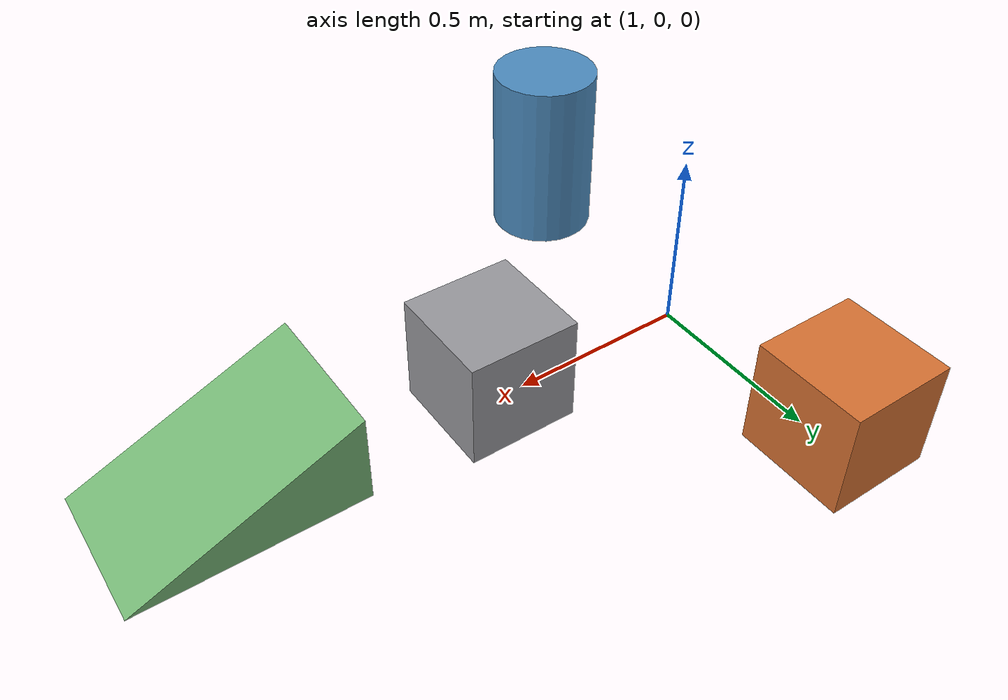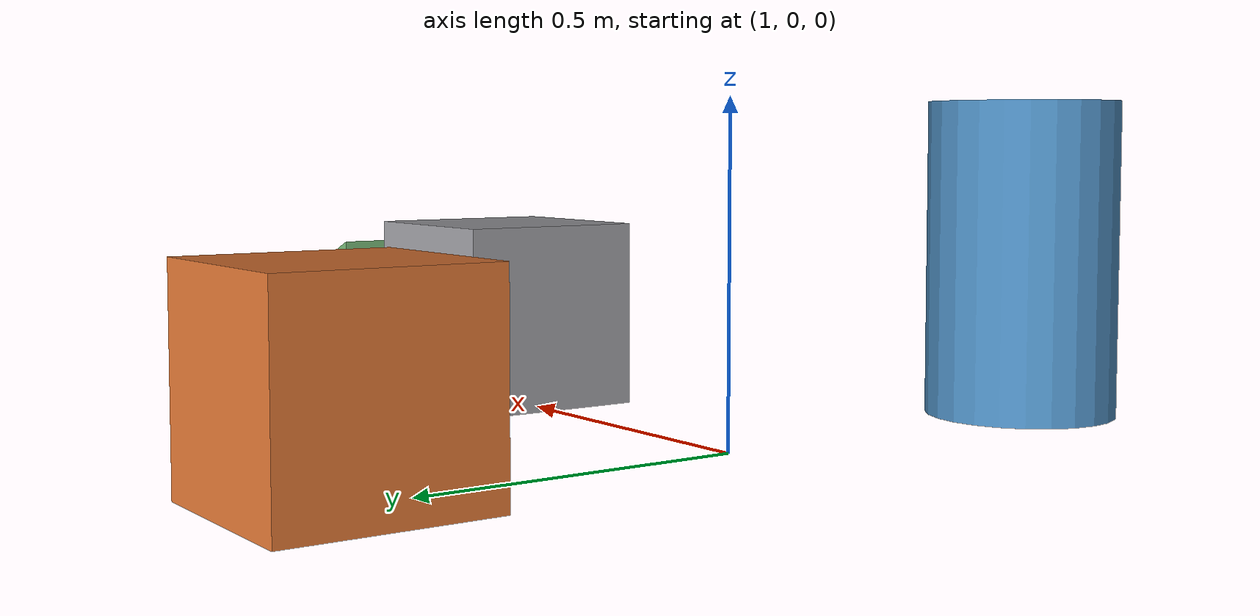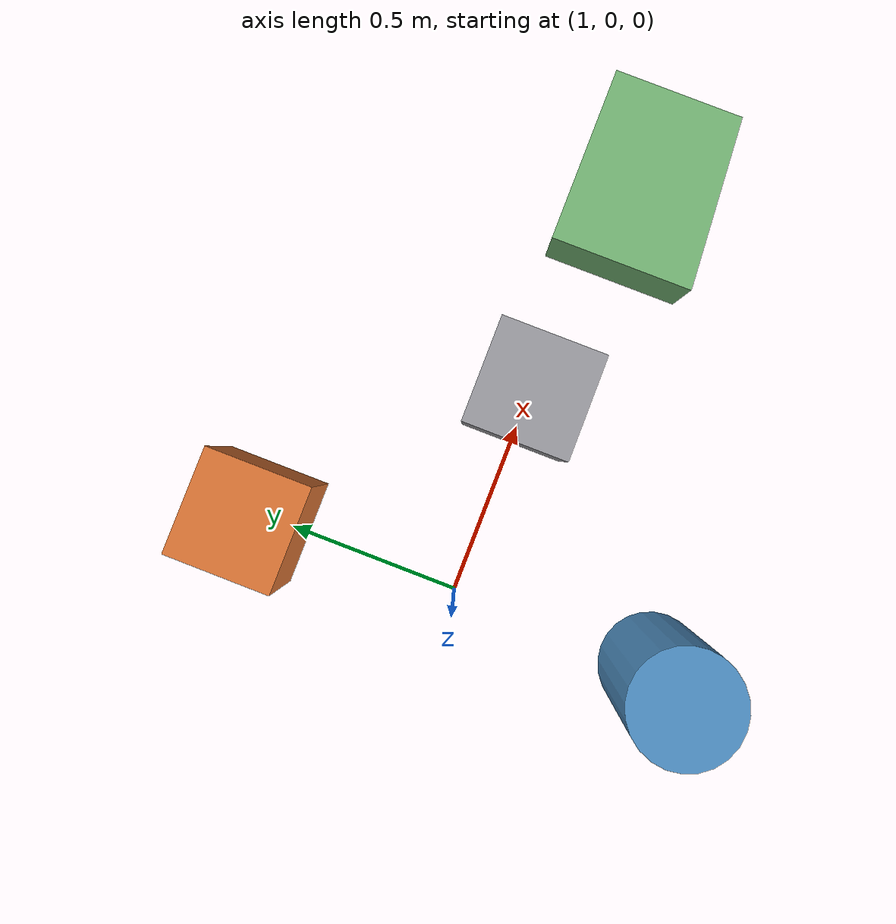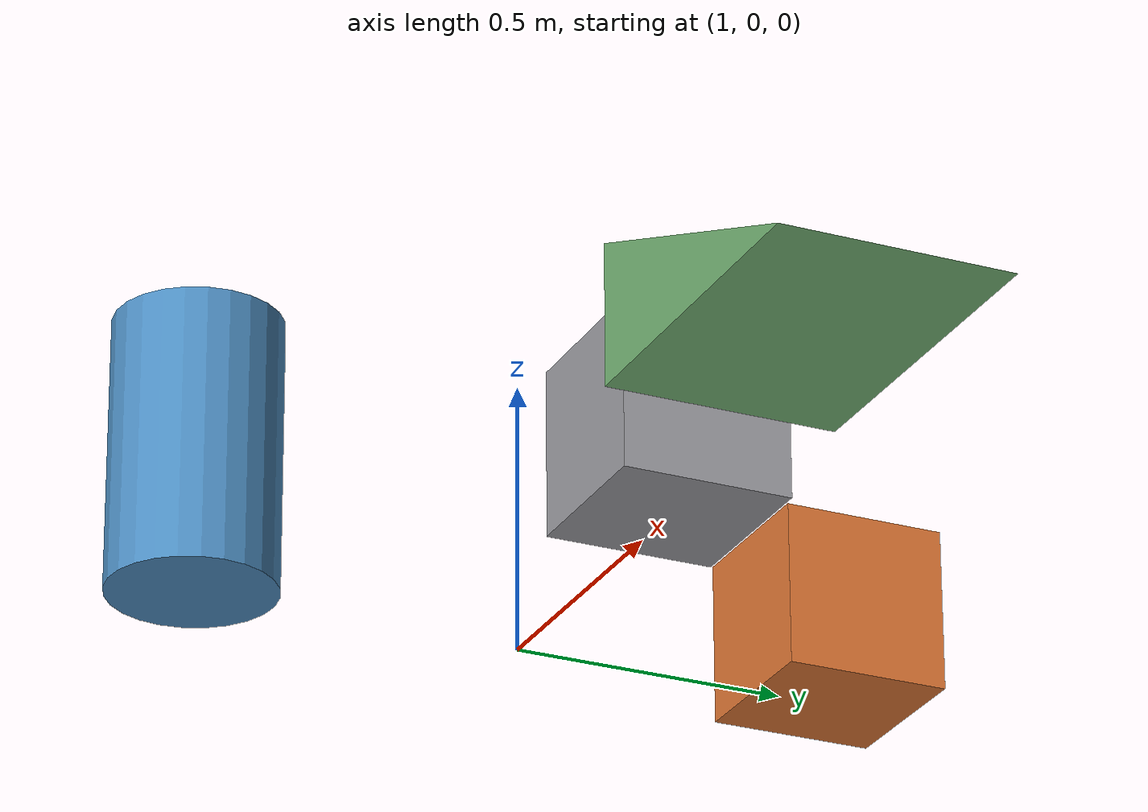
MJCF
<mujoco model="environment_starter">
  <asset>
    <!-- Eigene STL-Meshes fuer die Objekte. scale beachten (CAD oft in mm). -->
    <mesh name="sample_crate" file="meshes/sample_crate.stl" />
    <mesh name="sample_ramp" file="meshes/sample_ramp.stl" />
  </asset>
  <worldbody>
    <!-- Primitive Hindernisse (kein Mesh noetig). -->
    <geom name="box_demo" type="box" pos="1.0  0.6 0.15" size="0.15 0.15 0.15" rgba="0.85 0.45 0.20 1" />
    <geom name="cylinder_demo" type="cylinder" pos="1.0 -0.6 0.25" size="0.15 0.25" rgba="0.30 0.55 0.75 1" />
    <!-- Eigene STL-Objekte. -->
    <geom name="crate_demo" type="mesh" mesh="sample_crate" pos="1.6  0.0 0.15" rgba="0.60 0.60 0.62 1" />
    <geom name="ramp_demo" type="mesh" mesh="sample_ramp" pos="2.0 -0.3 0.0" rgba="0.45 0.70 0.45 1" />
  </worldbody>
</mujoco>
